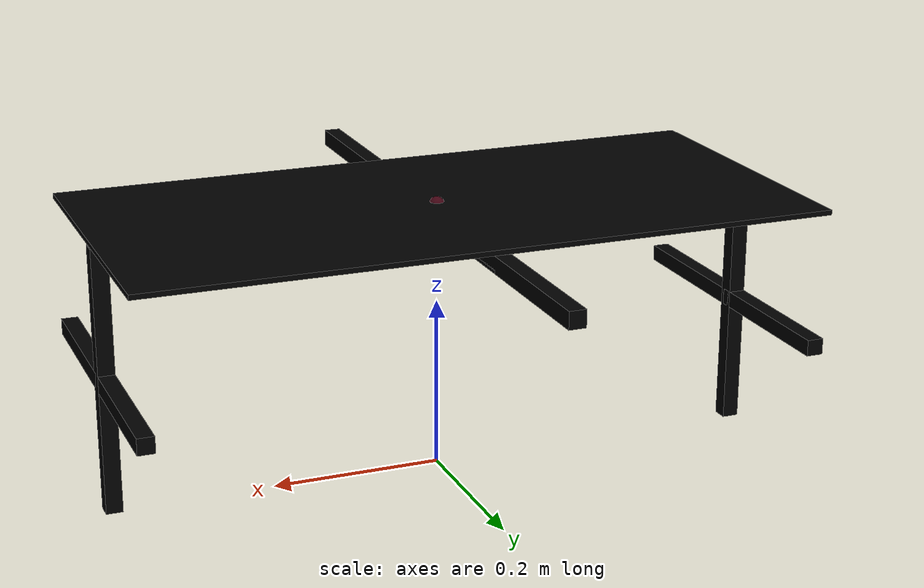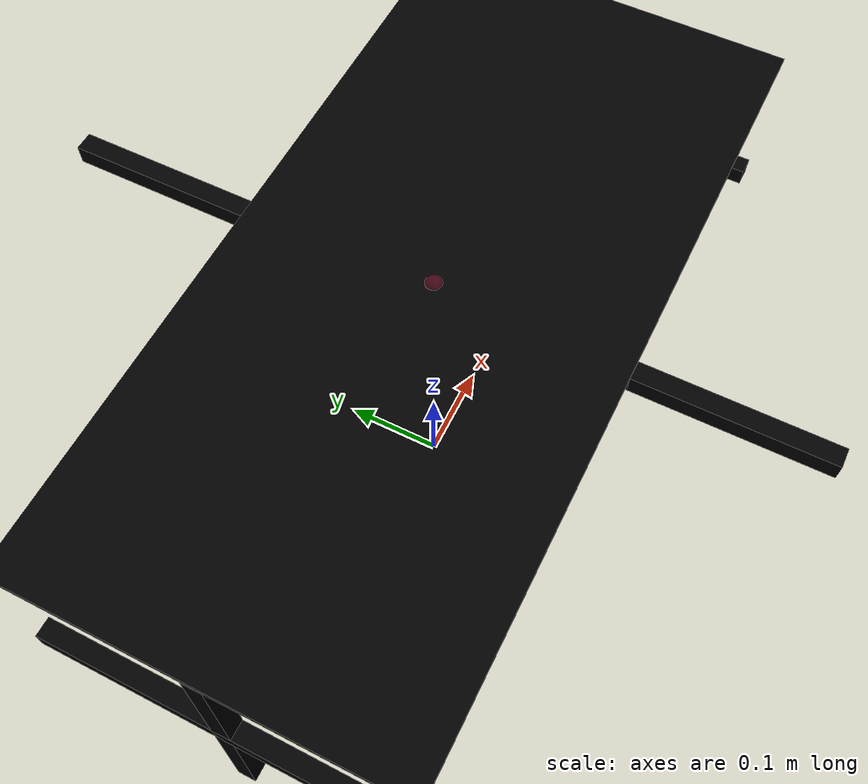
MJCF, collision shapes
<mujoco model="table_torsby_1549">
  <custom>
    <numeric data="0.06762 0.214951 0.009789 1 0 0 0" name="0_part0_initpos" />
    <numeric data="0.022888 -0.22714 0.002904 0 0 -1 0" name="3_part3_initpos" />
    <numeric data="0.653362 0.202809 0.009636 0.707105 -0.000293 -0.707108 -0.000293" name="2_part2_initpos" />
    <numeric data="-0.544775 0.237335 0.009636 -0.000293 -0.707105 0.000293 -0.707105" name="1_part1_initpos" />
  </custom>
  <asset>
    <mesh file="table_torsby_1549/0.stl" name="part0" scale="0.00044 0.00044 0.00044" />
    <mesh file="table_torsby_1549/3.stl" name="part3" scale="0.00044 0.00044 0.00044" />
    <mesh file="table_torsby_1549/2.stl" name="part2" scale="0.00044 0.00044 0.00044" />
    <mesh file="table_torsby_1549/1.stl" name="part1" scale="0.00044 0.00044 0.00044" />
  </asset>
  <worldbody><body name="combined_body" pos="0 0 0.302915009765625" quat="1 0 0 0"><geom conaffinity="0" contype="0" density="0" mesh="part0" name="0_part0_mesh" pos="0.0 0.0 0.0" rgba="0.82 0.71 0.55 1" type="mesh" quat="1 0 0 0" />
      <geom density="50" name="noviz_collision_0_part0_0" pos="0.0 0.0 0.0" quat="1 0 0 0" rgba="0 0 0 0" size="0.009460000000000001 0.18999200000000002 0.0096657132" solref="0.001 1" type="box" />
      <geom density="50" name="noviz_collision_0_part0_1" pos="0.0 0.0 0.0" quat="1 0 0 0" rgba="0 0 0 0" size="0.009460000000000001 0.18999200000000002 0.0096657132" solref="0.001 1" type="box" />
      <geom density="50" name="noviz_collision_0_part0_2" pos="0.0 0.0 0.0" quat="1 0 0 0" rgba="0 0 0 0" size="0.009460000000000001 0.18999200000000002 0.0096657132" solref="0.001 1" type="box" />
      <geom density="50" name="noviz_collision_0_part0_3" pos="0.0 0.0 0.0" quat="1 0 0 0" rgba="0 0 0 0" size="0.009460000000000001 0.374 0.0096657132" solref="0.001 1" type="box" />
      <geom density="50" name="noviz_collision_0_part0_4" pos="0.0 0.0 0.0" quat="1 0 0 0" rgba="0 0 0 0" size="0.009460000000000001 0.374 0.0096657132" solref="0.001 1" type="box" />
      <site name="0_part0_horizontal_radius_site" pos="0.0 0.0 0.0" quat="1 0 0 0" rgba="0 0 0 0" size="0.00044" />
      <site name="0_part0_top_site" pos="0.0 0.0 0.0" quat="1 0 0 0" rgba="0 0 0 0" size="0.00044" />
      <site name="0_part0_bottom_site" pos="0.0 0.0 0.0" quat="1 0 0 0" rgba="0 0 0 0" size="0.00044" />
      <site name="0_part0_corner_site8" pos="0.0 0.0 0.0" quat="1 0 0 0" rgba="0 0 0 0" size="0.0088" />
      <site name="0_part0_corner_site7" pos="0.0 0.0 0.0" quat="1 0 0 0" rgba="0 0 0 0" size="0.0088" />
      <site name="0_part0_corner_site6" pos="0.0 0.0 0.0" quat="1 0 0 0" rgba="0 0 0 0" size="0.0088" />
      <site name="0_part0_corner_site5" pos="0.0 0.0 0.0" quat="1 0 0 0" rgba="0 0 0 0" size="0.0088" />
      <site name="0_part0_corner_site4" pos="0.0 0.0 0.0" quat="1 0 0 0" rgba="0 0 0 0" size="0.0088" />
      <site name="0_part0_corner_site3" pos="0.0 0.0 0.0" quat="1 0 0 0" rgba="0 0 0 0" size="0.0088" />
      <site name="0_part0_corner_site2" pos="0.0 0.0 0.0" quat="1 0 0 0" rgba="0 0 0 0" size="0.0088" />
      <site name="0_part0_corner_site1" pos="0.0 0.0 0.0" quat="1 0 0 0" rgba="0 0 0 0" size="0.0088" />
      <site name="spine-top,0,180,conn_site1" pos="0.0 0.0 0.0" quat="1 0 0 0" rgba="0.9019 0.0980 0.2941 0.3" size="0.0088" />
      <site name="spine1-side,0,conn_site2" pos="0.0 0.0 0.0" quat="1 0 0 0" rgba="0.2352 0.7058 0.2941 0.3" size="0.0088" />
      <site name="spine2-side,0,conn_site2" pos="0.0 0.0 0.0" quat="1 0 0 0" rgba="1.0 0.8823 0.0980 0.3" size="0.0088" />
      <site name="spine2-side,0,conn_site1" pos="0.0 0.0 0.0" quat="1 0 0 0" rgba="1.0 0.8823 0.0980 0.3" size="0.0088" />
      <site name="spine1-side,0,conn_site1" pos="0.0 0.0 0.0" quat="1 0 0 0" rgba="0.2352 0.7058 0.2941 0.3" size="0.0088" />
    <geom conaffinity="0" contype="0" density="0" mesh="part3" name="3_part3_mesh" pos="0.0 0.0 0.012729470468" rgba="0.82 0.71 0.55 1" type="mesh" quat="1 0 0 0" />
      <geom density="50" name="noviz_collision_3_part3_0" pos="0.0 0.0 0.012729470468" quat="1 0 0 0" rgba="0 0 0 0" size="0.39674800000000005 0.18999200000000002 0.0029341619999999997" solref="0.001 1" type="box" />
      <site name="3_part3_horizontal_radius_site" pos="0.0 0.0 0.012729470468" quat="1 0 0 0" rgba="0 0 0 0" size="0.00044" />
      <site name="3_part3_top_site" pos="0.0 0.0 0.012729470468" quat="1 0 0 0" rgba="0 0 0 0" size="0.00044" />
      <site name="3_part3_bottom_site" pos="0.0 0.0 0.012729470468" quat="1 0 0 0" rgba="0 0 0 0" size="0.00044" />
      <site name="3_part3_corner_site8" pos="0.0 0.0 0.012729470468" quat="1 0 0 0" rgba="0 0 0 0" size="0.0088" />
      <site name="3_part3_corner_site7" pos="0.0 0.0 0.012729470468" quat="1 0 0 0" rgba="0 0 0 0" size="0.0088" />
      <site name="3_part3_corner_site6" pos="0.0 0.0 0.012729470468" quat="1 0 0 0" rgba="0 0 0 0" size="0.0088" />
      <site name="3_part3_corner_site5" pos="0.0 0.0 0.012729470468" quat="1 0 0 0" rgba="0 0 0 0" size="0.0088" />
      <site name="3_part3_corner_site4" pos="0.0 0.0 0.012729470468" quat="1 0 0 0" rgba="0 0 0 0" size="0.0088" />
      <site name="3_part3_corner_site3" pos="0.0 0.0 0.012729470468" quat="1 0 0 0" rgba="0 0 0 0" size="0.0088" />
      <site name="3_part3_corner_site2" pos="0.0 0.0 0.012729470468" quat="1 0 0 0" rgba="0 0 0 0" size="0.0088" />
      <site name="3_part3_corner_site1" pos="0.0 0.0 0.012729470468" quat="1 0 0 0" rgba="0 0 0 0" size="0.0088" />
      <site name="top-spine,0,180,conn_site1" pos="0.0 0.0 0.012729470468" quat="1 0 0 0" rgba="0.9019 0.0980 0.2941 0.3" size="0.0088" />
    <geom conaffinity="0" contype="0" density="0" mesh="part2" name="2_part2_mesh" pos="0.387101843788 0.0 -0.1461196924" rgba="0.82 0.71 0.55 1" type="mesh" quat="1 0 0 0" />
      <geom density="50" name="noviz_collision_2_part2_0" pos="0.387101843788 0.0 -0.1461196924" quat="1 0 0 0" rgba="0 0 0 0" size="0.0096681024 0.009460000000000001 0.15400000000000003" solref="0.001 1" type="box" />
      <geom density="50" name="noviz_collision_2_part2_2" pos="0.387101843788 0.0 -0.1461196924" quat="1 0 0 0" rgba="0 0 0 0" size="0.0096681024 0.009460000000000001 0.15400000000000003" solref="0.001 1" type="box" />
      <geom density="50" name="noviz_collision_2_part2_1" pos="0.387101843788 0.0 -0.1461196924" quat="1 0 0 0" rgba="0 0 0 0" size="0.0096681024 0.18999200000000002 0.009460000000000001" solref="0.001 1" type="box" />
      <site name="2_part2_horizontal_radius_site" pos="0.387101843788 0.0 -0.1461196924" quat="1 0 0 0" rgba="0 0 0 0" size="0.00044" />
      <site name="2_part2_top_site" pos="0.387101843788 0.0 -0.1461196924" quat="1 0 0 0" rgba="0 0 0 0" size="0.00044" />
      <site name="2_part2_bottom_site" pos="0.387101843788 0.0 -0.1461196924" quat="1 0 0 0" rgba="0 0 0 0" size="0.00044" />
      <site name="2_part2_corner_site8" pos="0.387101843788 0.0 -0.1461196924" quat="1 0 0 0" rgba="0 0 0 0" size="0.0088" />
      <site name="2_part2_corner_site7" pos="0.387101843788 0.0 -0.1461196924" quat="1 0 0 0" rgba="0 0 0 0" size="0.0088" />
      <site name="2_part2_corner_site6" pos="0.387101843788 0.0 -0.1461196924" quat="1 0 0 0" rgba="0 0 0 0" size="0.0088" />
      <site name="2_part2_corner_site5" pos="0.387101843788 0.0 -0.1461196924" quat="1 0 0 0" rgba="0 0 0 0" size="0.0088" />
      <site name="2_part2_corner_site4" pos="0.387101843788 0.0 -0.1461196924" quat="1 0 0 0" rgba="0 0 0 0" size="0.0088" />
      <site name="2_part2_corner_site3" pos="0.387101843788 0.0 -0.1461196924" quat="1 0 0 0" rgba="0 0 0 0" size="0.0088" />
      <site name="2_part2_corner_site2" pos="0.387101843788 0.0 -0.1461196924" quat="1 0 0 0" rgba="0 0 0 0" size="0.0088" />
      <site name="2_part2_corner_site1" pos="0.387101843788 0.0 -0.1461196924" quat="1 0 0 0" rgba="0 0 0 0" size="0.0088" />
      <site name="side-spine1,0,conn_site2" pos="0.387101843788 0.0 -0.1461196924" quat="1 0 0 0" rgba="0.2352 0.7058 0.2941 0.3" size="0.0088" />
      <site name="side-spine2,0,conn_site2" pos="0.387101843788 0.0 -0.1461196924" quat="1 0 0 0" rgba="1.0 0.8823 0.0980 0.3" size="0.0088" />
    <geom conaffinity="0" contype="0" density="0" mesh="part1" name="1_part1_mesh" pos="-0.38710184392 0.0 -0.1461196924" rgba="0.82 0.71 0.55 1" type="mesh" quat="1 0 0 0" />
      <geom density="50" name="noviz_collision_1_part1_0" pos="-0.38710184392 0.0 -0.1461196924" quat="1 0 0 0" rgba="0 0 0 0" size="0.0096681024 0.009460000000000001 0.15400000000000003" solref="0.001 1" type="box" />
      <geom density="50" name="noviz_collision_1_part1_2" pos="-0.38710184392 0.0 -0.1461196924" quat="1 0 0 0" rgba="0 0 0 0" size="0.0096681024 0.009460000000000001 0.15400000000000003" solref="0.001 1" type="box" />
      <geom density="50" name="noviz_collision_1_part1_1" pos="-0.38710184392 0.0 -0.1461196924" quat="1 0 0 0" rgba="0 0 0 0" size="0.0096681024 0.18999200000000002 0.009460000000000001" solref="0.001 1" type="box" />
      <site name="1_part1_horizontal_radius_site" pos="-0.38710184392 0.0 -0.1461196924" quat="1 0 0 0" rgba="0 0 0 0" size="0.00044" />
      <site name="1_part1_top_site" pos="-0.38710184392 0.0 -0.1461196924" quat="1 0 0 0" rgba="0 0 0 0" size="0.00044" />
      <site name="1_part1_bottom_site" pos="-0.38710184392 0.0 -0.1461196924" quat="1 0 0 0" rgba="0 0 0 0" size="0.0088" />
      <site name="1_part1_corner_site8" pos="-0.38710184392 0.0 -0.1461196924" quat="1 0 0 0" rgba="0 0 0 0" size="0.0088" />
      <site name="1_part1_corner_site7" pos="-0.38710184392 0.0 -0.1461196924" quat="1 0 0 0" rgba="0 0 0 0" size="0.0088" />
      <site name="1_part1_corner_site6" pos="-0.38710184392 0.0 -0.1461196924" quat="1 0 0 0" rgba="0 0 0 0" size="0.0088" />
      <site name="1_part1_corner_site5" pos="-0.38710184392 0.0 -0.1461196924" quat="1 0 0 0" rgba="0 0 0 0" size="0.0088" />
      <site name="1_part1_corner_site4" pos="-0.38710184392 0.0 -0.1461196924" quat="1 0 0 0" rgba="0 0 0 0" size="0.0088" />
      <site name="1_part1_corner_site3" pos="-0.38710184392 0.0 -0.1461196924" quat="1 0 0 0" rgba="0 0 0 0" size="0.0088" />
      <site name="1_part1_corner_site2" pos="-0.38710184392 0.0 -0.1461196924" quat="1 0 0 0" rgba="0 0 0 0" size="0.0088" />
      <site name="1_part1_corner_site1" pos="-0.38710184392 0.0 -0.1461196924" quat="1 0 0 0" rgba="0 0 0 0" size="0.0088" />
      <site name="side-spine2,0,conn_site1" pos="-0.38710184392 0.0 -0.1461196924" quat="1 0 0 0" rgba="1.0 0.8823 0.0980 0.3" size="0.0088" />
      <site name="side-spine1,0,conn_site1" pos="-0.38710184392 0.0 -0.1461196924" quat="1 0 0 0" rgba="0.2352 0.7058 0.2941 0.3" size="0.0088" />
    </body></worldbody><actuator />
  <sensor />
  <contact />
  <default />
</mujoco>
